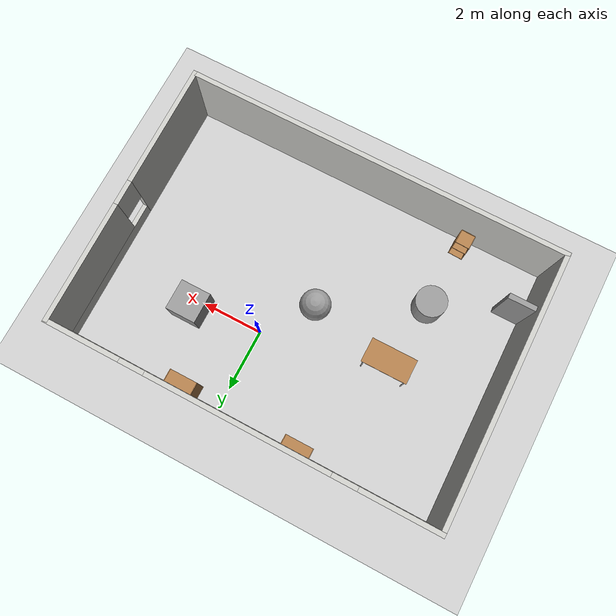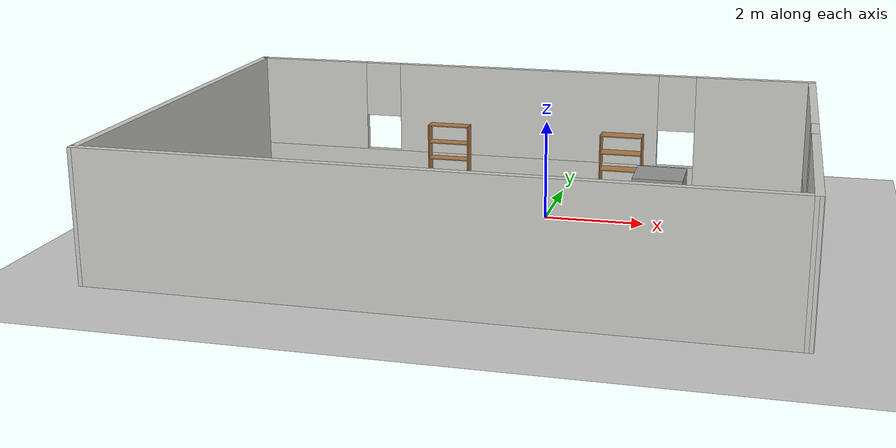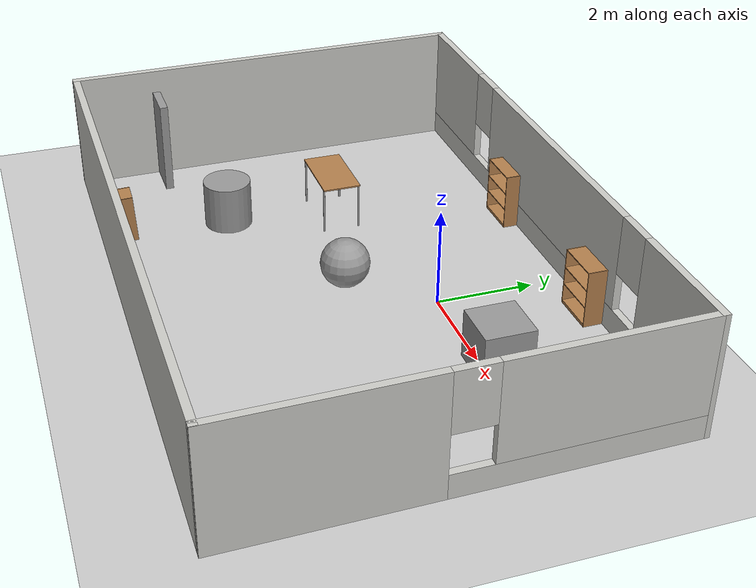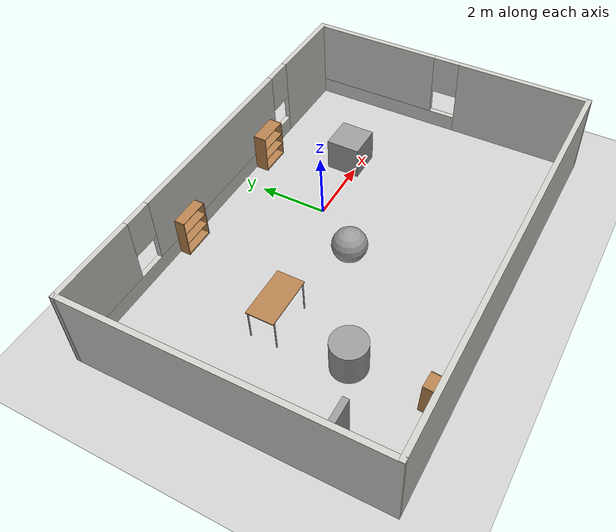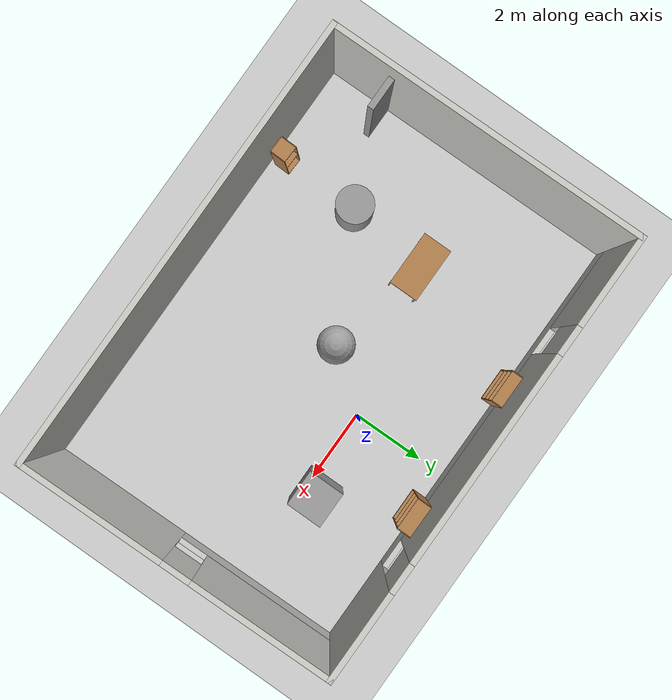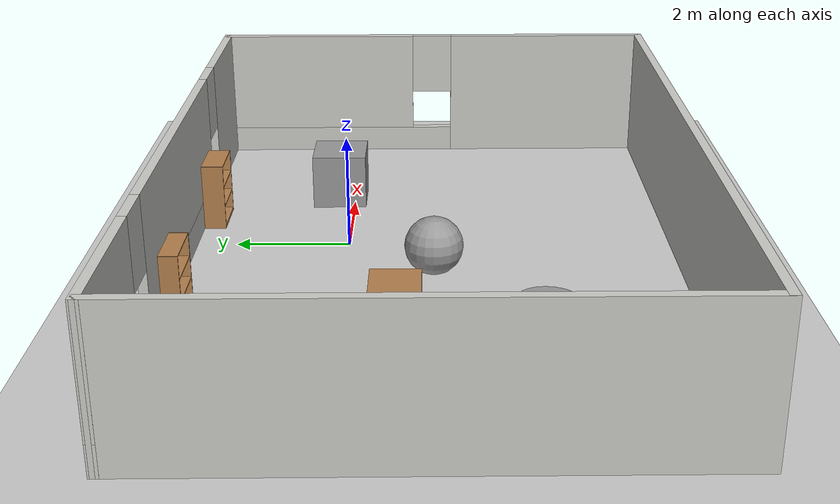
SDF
<sdf version="1.6">
 <world name="default">
  <light name="sun" type="directional">
   <pose>0 0 15 0 -0 0</pose>
   <diffuse>0.8 0.8 0.8 1</diffuse>
   <specular>0.2 0.2 0.2 1</specular>
   <attenuation>
    <range>1000</range>
    <constant>0.9</constant>
    <linear>0.01</linear>
    <quadratic>0.001</quadratic>
   </attenuation>
   <direction>-0.5 0.1 -0.9</direction>
  </light>
  <model name="ground_plane">
   <static>1</static>
   <link name="link">
    <collision name="collision">
     <geometry><plane><normal>0 0 1</normal><size>100 100</size></plane></geometry>
     <surface><friction><ode><mu>100</mu><mu2>50</mu2></ode></friction></surface>
    </collision>
    <visual name="visual">
     <transparency>1</transparency>
     <cast_shadows>0</cast_shadows>
     <geometry><plane><normal>0 0 1</normal><size>100 100</size></plane></geometry>
     <material>
      <script><uri>file://media/materials/scripts/gazebo.material</uri><name>Gazebo/Grey</name></script>
     </material>
    </visual>
   </link>
  </model>
  <gravity>0 0 -9.8</gravity>
  <magnetic_field>6e-06 2.3e-05 -4.2e-05</magnetic_field>
  <atmosphere type="adiabatic"/>
  <physics name="default_physics" default="0" type="ode">
   <max_step_size>0.001</max_step_size>
   <real_time_factor>1</real_time_factor>
   <real_time_update_rate>1000</real_time_update_rate>
  </physics>
  <scene><ambient>0.4 0.4 0.4 1</ambient><background>0.7 0.7 0.7 1</background><shadows>1</shadows></scene>
  <spherical_coordinates>
   <surface_model>EARTH_WGS84</surface_model>
   <latitude_deg>0</latitude_deg>
   <longitude_deg>0</longitude_deg>
   <elevation>0</elevation>
   <heading_deg>0</heading_deg>
  </spherical_coordinates>
  <model name="NickBuilding">
   <pose>-0.967682 -1.51257 0 0 -0 0</pose>
   <link name="Door_0">
    <collision name="Door_0_Collision">
     <geometry><box><size>0.9 0.17 2</size></box></geometry>
     <pose>0 0 1 0 -0 0</pose>
    </collision>
    <visual name="Door_0_Visual">
     <pose>0 0 1 0 -0 0</pose>
     <geometry><box><size>0.9 0.17 2</size></box></geometry>
     <material>
      <script><uri>file://media/materials/scripts/gazebo.material</uri><name>Gazebo/Grey</name></script>
     </material>
    </visual>
    <pose>-5.63539 -2.55287 0 0 -0 0</pose>
   </link>
   <link name="Wall_0">
    <pose>-0.049787 4.29373 0 0 -0 3.14159</pose>
    <visual name="Wall_0_Visual_0">
     <pose>-4.98398 0 1.25 0 -0 0</pose>
     <geometry><box><size>2.47203 0.15 2.5</size></box></geometry>
     <material>
      <script><uri>file://media/materials/scripts/gazebo.material</uri><name>Gazebo/CeilingTiled</name></script>
      <ambient>1 1 1 1</ambient>
     </material>
     <meta><layer>0</layer></meta>
    </visual>
    <collision name="Wall_0_Collision_0">
     <geometry><box><size>2.47203 0.15 2.5</size></box></geometry>
     <pose>-4.98398 0 1.25 0 -0 0</pose>
    </collision>
    <visual name="Wall_0_Visual_1">
     <pose>1.23602 0 0.25 0 -0 0</pose>
     <geometry><box><size>9.96797 0.15 0.5</size></box></geometry>
     <material>
      <script><uri>file://media/materials/scripts/gazebo.material</uri><name>Gazebo/CeilingTiled</name></script>
      <ambient>1 1 1 1</ambient>
     </material>
     <meta><layer>0</layer></meta>
    </visual>
    <collision name="Wall_0_Collision_1">
     <geometry><box><size>9.96797 0.15 0.5</size></box></geometry>
     <pose>1.23602 0 0.25 0 -0 0</pose>
    </collision>
    <visual name="Wall_0_Visual_2">
     <pose>-0.042379 0 1.5 0 -0 0</pose>
     <geometry><box><size>5.81117 0.15 2</size></box></geometry>
     <material>
      <script><uri>file://media/materials/scripts/gazebo.material</uri><name>Gazebo/CeilingTiled</name></script>
      <ambient>1 1 1 1</ambient>
     </material>
     <meta><layer>0</layer></meta>
    </visual>
    <collision name="Wall_0_Collision_2">
     <geometry><box><size>5.81117 0.15 2</size></box></geometry>
     <pose>-0.042379 0 1.5 0 -0 0</pose>
    </collision>
    <visual name="Wall_0_Visual_3">
     <pose>4.9416 0 1.5 0 -0 0</pose>
     <geometry><box><size>2.55679 0.15 2</size></box></geometry>
     <material>
      <script><uri>file://media/materials/scripts/gazebo.material</uri><name>Gazebo/CeilingTiled</name></script>
      <ambient>1 1 1 1</ambient>
     </material>
     <meta><layer>0</layer></meta>
    </visual>
    <collision name="Wall_0_Collision_3">
     <geometry><box><size>2.55679 0.15 2</size></box></geometry>
     <pose>4.9416 0 1.5 0 -0 0</pose>
    </collision>
    <visual name="Wall_0_Visual_4">
     <pose>-3.34797 0 1.9 0 -0 0</pose>
     <geometry><box><size>0.8 0.15 1.2</size></box></geometry>
     <material>
      <script><uri>file://media/materials/scripts/gazebo.material</uri><name>Gazebo/CeilingTiled</name></script>
      <ambient>1 1 1 1</ambient>
     </material>
     <meta><layer>0</layer></meta>
    </visual>
    <collision name="Wall_0_Collision_4">
     <geometry><box><size>0.8 0.15 1.2</size></box></geometry>
     <pose>-3.34797 0 1.9 0 -0 0</pose>
    </collision>
    <visual name="Wall_0_Visual_5">
     <pose>3.26321 0 1.9 0 -0 0</pose>
     <geometry><box><size>0.8 0.15 1.2</size></box></geometry>
     <material>
      <script><uri>file://media/materials/scripts/gazebo.material</uri><name>Gazebo/CeilingTiled</name></script>
      <ambient>1 1 1 1</ambient>
     </material>
     <meta><layer>0</layer></meta>
    </visual>
    <collision name="Wall_0_Collision_5">
     <geometry><box><size>0.8 0.15 1.2</size></box></geometry>
     <pose>3.26321 0 1.9 0 -0 0</pose>
    </collision>
   </link>
   <link name="Wall_1">
    <collision name="Wall_1_Collision">
     <geometry><box><size>8.69037 0.15 2.5</size></box></geometry>
     <pose>0 0 1.25 0 -0 0</pose>
    </collision>
    <visual name="Wall_1_Visual">
     <pose>0 0 1.25 0 -0 0</pose>
     <geometry><box><size>8.69037 0.15 2.5</size></box></geometry>
     <material>
      <script><uri>file://media/materials/scripts/gazebo.material</uri><name>Gazebo/CeilingTiled</name></script>
      <ambient>1 1 1 1</ambient>
     </material>
     <meta><layer>0</layer></meta>
    </visual>
    <pose>-6.15509 -0.002867 0 0 0 -1.5615</pose>
   </link>
   <link name="Wall_2">
    <collision name="Wall_2_Collision">
     <geometry><box><size>12.44 0.15 2.5</size></box></geometry>
     <pose>0 0 1.25 0 -0 0</pose>
    </collision>
    <visual name="Wall_2_Visual">
     <pose>0 0 1.25 0 -0 0</pose>
     <geometry><box><size>12.44 0.15 2.5</size></box></geometry>
     <material>
      <script><uri>file://media/materials/scripts/gazebo.material</uri><name>Gazebo/CeilingTiled</name></script>
      <ambient>1 1 1 1</ambient>
     </material>
     <meta><layer>0</layer></meta>
    </visual>
    <pose>0.039615 -4.28287 0 0 0 -0.001627</pose>
   </link>
   <link name="Wall_3">
    <pose>6.14491 -0.012867 0 0 -0 1.58241</pose>
    <visual name="Wall_3_Visual_0">
     <pose>-2.35512 0 1.25 0 -0 0</pose>
     <geometry><box><size>4.00034 0.15 2.5</size></box></geometry>
     <material>
      <script><uri>file://media/materials/scripts/gazebo.material</uri><name>Gazebo/CeilingTiled</name></script>
      <ambient>1 1 1 1</ambient>
     </material>
     <meta><layer>0</layer></meta>
    </visual>
    <collision name="Wall_3_Collision_0">
     <geometry><box><size>4.00034 0.15 2.5</size></box></geometry>
     <pose>-2.35512 0 1.25 0 -0 0</pose>
    </collision>
    <visual name="Wall_3_Visual_1">
     <pose>2.00017 0 0.25 0 -0 0</pose>
     <geometry><box><size>4.71023 0.15 0.5</size></box></geometry>
     <material>
      <script><uri>file://media/materials/scripts/gazebo.material</uri><name>Gazebo/CeilingTiled</name></script>
      <ambient>1 1 1 1</ambient>
     </material>
     <meta><layer>0</layer></meta>
    </visual>
    <collision name="Wall_3_Collision_1">
     <geometry><box><size>4.71023 0.15 0.5</size></box></geometry>
     <pose>2.00017 0 0.25 0 -0 0</pose>
    </collision>
    <visual name="Wall_3_Visual_2">
     <pose>2.40017 0 1.5 0 -0 0</pose>
     <geometry><box><size>3.91023 0.15 2</size></box></geometry>
     <material>
      <script><uri>file://media/materials/scripts/gazebo.material</uri><name>Gazebo/CeilingTiled</name></script>
      <ambient>1 1 1 1</ambient>
     </material>
     <meta><layer>0</layer></meta>
    </visual>
    <collision name="Wall_3_Collision_2">
     <geometry><box><size>3.91023 0.15 2</size></box></geometry>
     <pose>2.40017 0 1.5 0 -0 0</pose>
    </collision>
    <visual name="Wall_3_Visual_3">
     <pose>0.045056 0 1.9 0 -0 0</pose>
     <geometry><box><size>0.8 0.15 1.2</size></box></geometry>
     <material>
      <script><uri>file://media/materials/scripts/gazebo.material</uri><name>Gazebo/CeilingTiled</name></script>
      <ambient>1 1 1 1</ambient>
     </material>
     <meta><layer>0</layer></meta>
    </visual>
    <collision name="Wall_3_Collision_3">
     <geometry><box><size>0.8 0.15 1.2</size></box></geometry>
     <pose>0.045056 0 1.9 0 -0 0</pose>
    </collision>
   </link>
   <static>1</static>
  </model>
  <model name="bookshelf">
   <static>1</static>
   <link name="link">
    <inertial><mass>1</mass></inertial>
    <collision name="back">
     <pose>0 0.005 0.6 0 -0 0</pose>
     <geometry><box><size>0.9 0.01 1.2</size></box></geometry>
    </collision>
    <visual name="visual1">
     <pose>0 0.005 0.6 0 -0 0</pose>
     <geometry><box><size>0.9 0.01 1.2</size></box></geometry>
     <material>
      <script><uri>file://media/materials/scripts/gazebo.material</uri><name>Gazebo/Wood</name></script>
     </material>
    </visual>
    <collision name="left_side">
     <pose>0.45 -0.195 0.6 0 -0 0</pose>
     <geometry><box><size>0.02 0.4 1.2</size></box></geometry>
    </collision>
    <visual name="visual2">
     <pose>0.45 -0.195 0.6 0 -0 0</pose>
     <geometry><box><size>0.02 0.4 1.2</size></box></geometry>
     <material>
      <script><uri>file://media/materials/scripts/gazebo.material</uri><name>Gazebo/Wood</name></script>
     </material>
    </visual>
    <collision name="right_side">
     <pose>-0.45 -0.195 0.6 0 -0 0</pose>
     <geometry><box><size>0.02 0.4 1.2</size></box></geometry>
    </collision>
    <visual name="visual3">
     <pose>-0.45 -0.195 0.6 0 -0 0</pose>
     <geometry><box><size>0.02 0.4 1.2</size></box></geometry>
     <material>
      <script><uri>file://media/materials/scripts/gazebo.material</uri><name>Gazebo/Wood</name></script>
     </material>
    </visual>
    <collision name="bottom">
     <pose>0 -0.195 0.03 0 -0 0</pose>
     <geometry><box><size>0.88 0.4 0.06</size></box></geometry>
    </collision>
    <visual name="visual4">
     <pose>0 -0.195 0.03 0 -0 0</pose>
     <geometry><box><size>0.88 0.4 0.06</size></box></geometry>
     <material>
      <script><uri>file://media/materials/scripts/gazebo.material</uri><name>Gazebo/Wood</name></script>
     </material>
    </visual>
    <collision name="top">
     <pose>0 -0.195 1.19 0 -0 0</pose>
     <geometry><box><size>0.88 0.4 0.02</size></box></geometry>
    </collision>
    <visual name="visual5">
     <pose>0 -0.195 1.19 0 -0 0</pose>
     <geometry><box><size>0.88 0.4 0.02</size></box></geometry>
     <material>
      <script><uri>file://media/materials/scripts/gazebo.material</uri><name>Gazebo/Wood</name></script>
     </material>
    </visual>
    <collision name="low_shelf">
     <pose>0 -0.195 0.43 0 -0 0</pose>
     <geometry><box><size>0.88 0.4 0.02</size></box></geometry>
    </collision>
    <visual name="visual6">
     <pose>0 -0.195 0.43 0 -0 0</pose>
     <geometry><box><size>0.88 0.4 0.02</size></box></geometry>
     <material>
      <script><uri>file://media/materials/scripts/gazebo.material</uri><name>Gazebo/Wood</name></script>
     </material>
    </visual>
    <collision name="high_shelf">
     <pose>0 -0.195 0.8 0 -0 0</pose>
     <geometry><box><size>0.88 0.4 0.02</size></box></geometry>
    </collision>
    <visual name="visual7">
     <pose>0 -0.195 0.8 0 -0 0</pose>
     <geometry><box><size>0.88 0.4 0.02</size></box></geometry>
     <material>
      <script><uri>file://media/materials/scripts/gazebo.material</uri><name>Gazebo/Wood</name></script>
     </material>
    </visual>
   </link>
   <pose>-2.69972 2.79391 0 0 -0 0</pose>
  </model>
  <model name="table">
   <static>1</static>
   <link name="link">
    <collision name="surface">
     <pose>0 0 1 0 -0 0</pose>
     <geometry><box><size>1.5 0.8 0.03</size></box></geometry>
     <surface><friction><ode><mu>0.6</mu><mu2>0.6</mu2></ode></friction></surface>
    </collision>
    <visual name="visual1">
     <pose>0 0 1 0 -0 0</pose>
     <geometry><box><size>1.5 0.8 0.03</size></box></geometry>
     <material>
      <script><uri>file://media/materials/scripts/gazebo.material</uri><name>Gazebo/Wood</name></script>
     </material>
    </visual>
    <collision name="front_left_leg">
     <pose>0.68 0.38 0.5 0 -0 0</pose>
     <geometry><cylinder><radius>0.02</radius><length>1</length></cylinder></geometry>
    </collision>
    <visual name="front_left_leg">
     <pose>0.68 0.38 0.5 0 -0 0</pose>
     <geometry><cylinder><radius>0.02</radius><length>1</length></cylinder></geometry>
     <material>
      <script><uri>file://media/materials/scripts/gazebo.material</uri><name>Gazebo/Grey</name></script>
     </material>
    </visual>
    <collision name="front_right_leg">
     <pose>0.68 -0.38 0.5 0 -0 0</pose>
     <geometry><cylinder><radius>0.02</radius><length>1</length></cylinder></geometry>
    </collision>
    <visual name="front_right_leg">
     <pose>0.68 -0.38 0.5 0 -0 0</pose>
     <geometry><cylinder><radius>0.02</radius><length>1</length></cylinder></geometry>
     <material>
      <script><uri>file://media/materials/scripts/gazebo.material</uri><name>Gazebo/Grey</name></script>
     </material>
    </visual>
    <collision name="back_right_leg">
     <pose>-0.68 -0.38 0.5 0 -0 0</pose>
     <geometry><cylinder><radius>0.02</radius><length>1</length></cylinder></geometry>
    </collision>
    <visual name="back_right_leg">
     <pose>-0.68 -0.38 0.5 0 -0 0</pose>
     <geometry><cylinder><radius>0.02</radius><length>1</length></cylinder></geometry>
     <material>
      <script><uri>file://media/materials/scripts/gazebo.material</uri><name>Gazebo/Grey</name></script>
     </material>
    </visual>
    <collision name="back_left_leg">
     <pose>-0.68 0.38 0.5 0 -0 0</pose>
     <geometry><cylinder><radius>0.02</radius><length>1</length></cylinder></geometry>
    </collision>
    <visual name="back_left_leg">
     <pose>-0.68 0.38 0.5 0 -0 0</pose>
     <geometry><cylinder><radius>0.02</radius><length>1</length></cylinder></geometry>
     <material>
      <script><uri>file://media/materials/scripts/gazebo.material</uri><name>Gazebo/Grey</name></script>
     </material>
    </visual>
   </link>
   <pose>-3.95991 -0.916058 0 0 -0 0</pose>
  </model>
  <model name="bookshelf_0">
   <static>1</static>
   <link name="link">
    <inertial><mass>1</mass></inertial>
    <collision name="back">
     <pose>0 0.005 0.6 0 -0 0</pose>
     <geometry><box><size>0.9 0.01 1.2</size></box></geometry>
    </collision>
    <visual name="visual1">
     <pose>0 0.005 0.6 0 -0 0</pose>
     <geometry><box><size>0.9 0.01 1.2</size></box></geometry>
     <material>
      <script><uri>file://media/materials/scripts/gazebo.material</uri><name>Gazebo/Wood</name></script>
     </material>
    </visual>
    <collision name="left_side">
     <pose>0.45 -0.195 0.6 0 -0 0</pose>
     <geometry><box><size>0.02 0.4 1.2</size></box></geometry>
    </collision>
    <visual name="visual2">
     <pose>0.45 -0.195 0.6 0 -0 0</pose>
     <geometry><box><size>0.02 0.4 1.2</size></box></geometry>
     <material>
      <script><uri>file://media/materials/scripts/gazebo.material</uri><name>Gazebo/Wood</name></script>
     </material>
    </visual>
    <collision name="right_side">
     <pose>-0.45 -0.195 0.6 0 -0 0</pose>
     <geometry><box><size>0.02 0.4 1.2</size></box></geometry>
    </collision>
    <visual name="visual3">
     <pose>-0.45 -0.195 0.6 0 -0 0</pose>
     <geometry><box><size>0.02 0.4 1.2</size></box></geometry>
     <material>
      <script><uri>file://media/materials/scripts/gazebo.material</uri><name>Gazebo/Wood</name></script>
     </material>
    </visual>
    <collision name="bottom">
     <pose>0 -0.195 0.03 0 -0 0</pose>
     <geometry><box><size>0.88 0.4 0.06</size></box></geometry>
    </collision>
    <visual name="visual4">
     <pose>0 -0.195 0.03 0 -0 0</pose>
     <geometry><box><size>0.88 0.4 0.06</size></box></geometry>
     <material>
      <script><uri>file://media/materials/scripts/gazebo.material</uri><name>Gazebo/Wood</name></script>
     </material>
    </visual>
    <collision name="top">
     <pose>0 -0.195 1.19 0 -0 0</pose>
     <geometry><box><size>0.88 0.4 0.02</size></box></geometry>
    </collision>
    <visual name="visual5">
     <pose>0 -0.195 1.19 0 -0 0</pose>
     <geometry><box><size>0.88 0.4 0.02</size></box></geometry>
     <material>
      <script><uri>file://media/materials/scripts/gazebo.material</uri><name>Gazebo/Wood</name></script>
     </material>
    </visual>
    <collision name="low_shelf">
     <pose>0 -0.195 0.43 0 -0 0</pose>
     <geometry><box><size>0.88 0.4 0.02</size></box></geometry>
    </collision>
    <visual name="visual6">
     <pose>0 -0.195 0.43 0 -0 0</pose>
     <geometry><box><size>0.88 0.4 0.02</size></box></geometry>
     <material>
      <script><uri>file://media/materials/scripts/gazebo.material</uri><name>Gazebo/Wood</name></script>
     </material>
    </visual>
    <collision name="high_shelf">
     <pose>0 -0.195 0.8 0 -0 0</pose>
     <geometry><box><size>0.88 0.4 0.02</size></box></geometry>
    </collision>
    <visual name="visual7">
     <pose>0 -0.195 0.8 0 -0 0</pose>
     <geometry><box><size>0.88 0.4 0.02</size></box></geometry>
     <material>
      <script><uri>file://media/materials/scripts/gazebo.material</uri><name>Gazebo/Wood</name></script>
     </material>
    </visual>
   </link>
   <pose>1.19181 2.70836 0 0 -0 0</pose>
  </model>
  <model name="cabinet">
   <static>1</static>
   <link name="cabinet_bottom_plate">
    <inertial>
     <pose>0 0 -1 0 -0 0</pose>
     <inertia><ixx>2.05</ixx><ixy>0</ixy><ixz>0</ixz><iyy>2.05</iyy><iyz>0</iyz><izz>2.05</izz></inertia>
     <mass>25</mass>
    </inertial>
    <collision name="cabinet_bottom_plate_geom">
     <pose>0 0 0.01 0 -0 0</pose>
     <geometry><box><size>0.45 0.45 0.02</size></box></geometry>
    </collision>
    <visual name="cabinet_bottom_plate_geom_visual">
     <pose>0 0 0.01 0 -0 0</pose>
     <geometry><box><size>0.45 0.45 0.02</size></box></geometry>
     <material>
      <script><uri>file://media/materials/scripts/gazebo.material</uri><name>Gazebo/Wood</name></script>
     </material>
    </visual>
    <collision name="cabinet_bottom_plate_geom_cabinet_back_plate">
     <pose>0.235 0 0.51 0 -0 0</pose>
     <geometry><box><size>0.02 0.45 1.02</size></box></geometry>
    </collision>
    <visual name="cabinet_bottom_plate_geom_cabinet_back_plate_visual">
     <pose>0.235 0 0.51 0 -0 0</pose>
     <geometry><box><size>0.02 0.45 1.02</size></box></geometry>
     <material>
      <script><uri>file://media/materials/scripts/gazebo.material</uri><name>Gazebo/Wood</name></script>
     </material>
    </visual>
    <collision name="cabinet_bottom_plate_geom_cabinet_left_plate">
     <pose>0 0.235 0.51 0 -0 0</pose>
     <geometry><box><size>0.45 0.02 1.02</size></box></geometry>
    </collision>
    <visual name="cabinet_bottom_plate_geom_cabinet_left_plate_visual">
     <pose>0 0.235 0.51 0 -0 0</pose>
     <geometry><box><size>0.45 0.02 1.02</size></box></geometry>
     <material>
      <script><uri>file://media/materials/scripts/gazebo.material</uri><name>Gazebo/Wood</name></script>
     </material>
    </visual>
    <collision name="cabinet_bottom_plate_geom_cabinet_middle_plate">
     <pose>0 0 0.51 0 -0 0</pose>
     <geometry><box><size>0.45 0.45 0.02</size></box></geometry>
    </collision>
    <visual name="cabinet_bottom_plate_geom_cabinet_middle_plate_visual">
     <pose>0 0 0.51 0 -0 0</pose>
     <geometry><box><size>0.45 0.45 0.02</size></box></geometry>
     <material>
      <script><uri>file://media/materials/scripts/gazebo.material</uri><name>Gazebo/Wood</name></script>
     </material>
    </visual>
    <collision name="cabinet_bottom_plate_geom_cabinet_right_plate">
     <pose>0 -0.235 0.51 0 -0 0</pose>
     <geometry><box><size>0.45 0.02 1.02</size></box></geometry>
    </collision>
    <visual name="cabinet_bottom_plate_geom_cabinet_right_plate_visual">
     <pose>0 -0.235 0.51 0 -0 0</pose>
     <geometry><box><size>0.45 0.02 1.02</size></box></geometry>
     <material>
      <script><uri>file://media/materials/scripts/gazebo.material</uri><name>Gazebo/Wood</name></script>
     </material>
    </visual>
    <collision name="cabinet_bottom_plate_geom_cabinet_top_plate">
     <pose>0 0 1.01 0 -0 0</pose>
     <geometry><box><size>0.45 0.45 0.02</size></box></geometry>
    </collision>
    <visual name="cabinet_bottom_plate_geom_cabinet_top_plate_visual">
     <pose>0 0 1.01 0 -0 0</pose>
     <geometry><box><size>0.45 0.45 0.02</size></box></geometry>
     <material>
      <script><uri>file://media/materials/scripts/gazebo.material</uri><name>Gazebo/Wood</name></script>
     </material>
    </visual>
   </link>
   <pose>-4.37788 -5.34155 -0.005311 -0.001958 0.055249 -1.60624</pose>
  </model>
  <model name="unit_cylinder">
   <pose>-4.29545 -3.14624 0.499998 3e-06 -4e-06 0</pose>
   <link name="link">
    <inertial>
     <mass>1</mass>
     <inertia><ixx>0.145833</ixx><ixy>0</ixy><ixz>0</ixz><iyy>0.145833</iyy><iyz>0</iyz><izz>0.125</izz></inertia>
    </inertial>
    <collision name="collision">
     <geometry><cylinder><radius>0.5</radius><length>1</length></cylinder></geometry>
    </collision>
    <visual name="visual">
     <geometry><cylinder><radius>0.5</radius><length>1</length></cylinder></geometry>
     <material>
      <script><name>Gazebo/Grey</name><uri>file://media/materials/scripts/gazebo.material</uri></script>
     </material>
    </visual>
   </link>
  </model>
  <model name="unit_box">
   <pose>2.25967 0.284069 0.499995 0 1e-05 0</pose>
   <link name="link">
    <inertial>
     <mass>1</mass>
     <inertia>
      <ixx>0.166667</ixx>
      <ixy>0</ixy>
      <ixz>0</ixz>
      <iyy>0.166667</iyy>
      <iyz>0</iyz>
      <izz>0.166667</izz>
     </inertia>
    </inertial>
    <collision name="collision"><geometry><box><size>1 1 1</size></box></geometry></collision>
    <visual name="visual">
     <geometry><box><size>1 1 1</size></box></geometry>
     <material>
      <script><name>Gazebo/Grey</name><uri>file://media/materials/scripts/gazebo.material</uri></script>
     </material>
    </visual>
   </link>
  </model>
  <model name="unit_sphere">
   <pose>-1.17498 -1.50764 0.5 0 -0 0</pose>
   <link name="link">
    <inertial>
     <mass>1</mass>
     <inertia><ixx>0.1</ixx><ixy>0</ixy><ixz>0</ixz><iyy>0.1</iyy><iyz>0</iyz><izz>0.1</izz></inertia>
    </inertial>
    <collision name="collision"><geometry><sphere><radius>0.5</radius></sphere></geometry></collision>
    <visual name="visual">
     <geometry><sphere><radius>0.5</radius></sphere></geometry>
     <material>
      <script><name>Gazebo/Grey</name><uri>file://media/materials/scripts/gazebo.material</uri></script>
     </material>
    </visual>
   </link>
  </model>
 </world>
</sdf>
